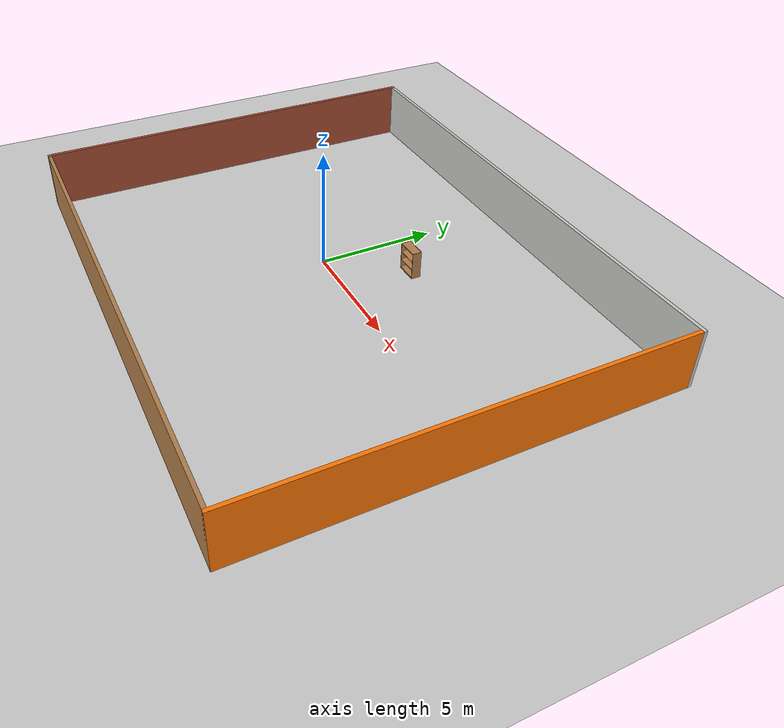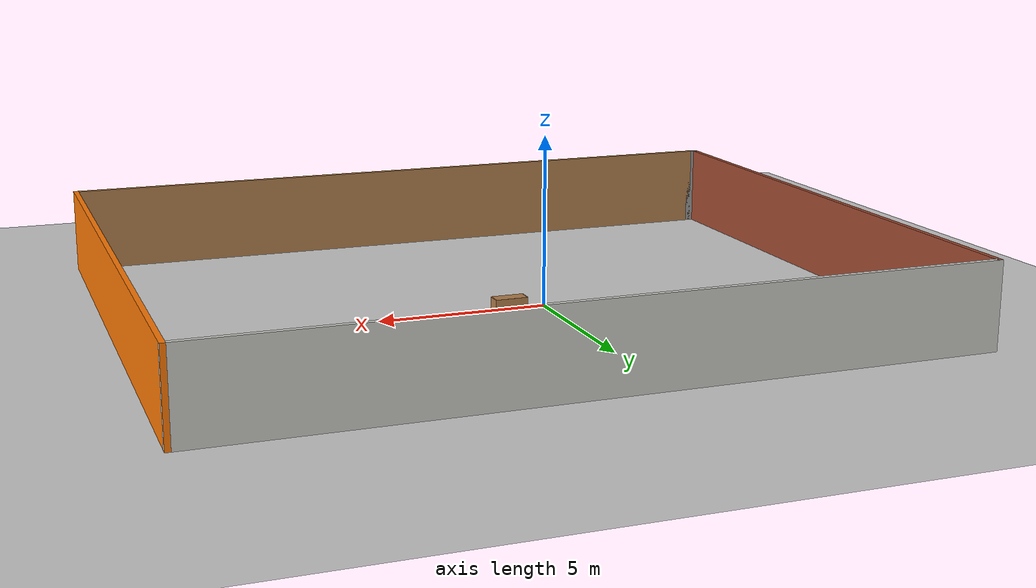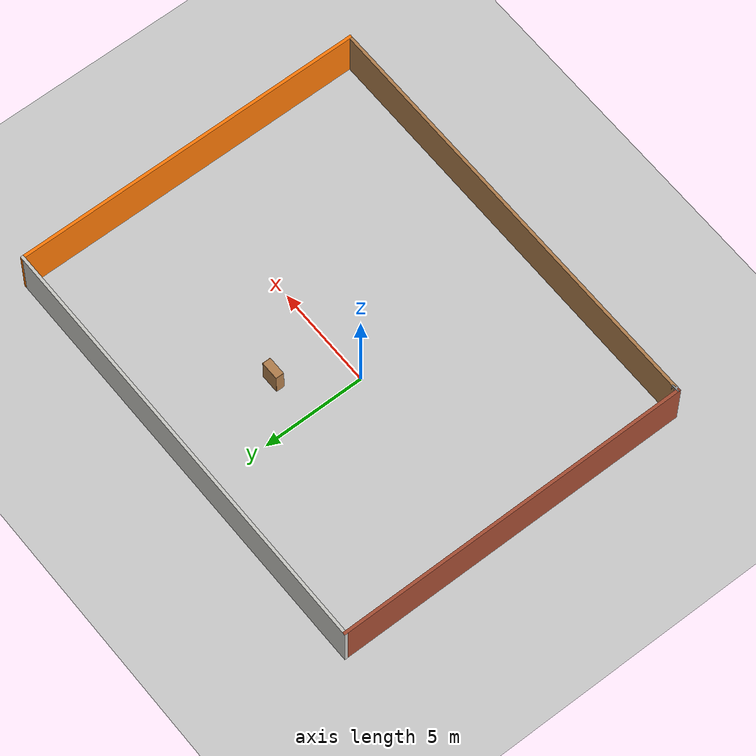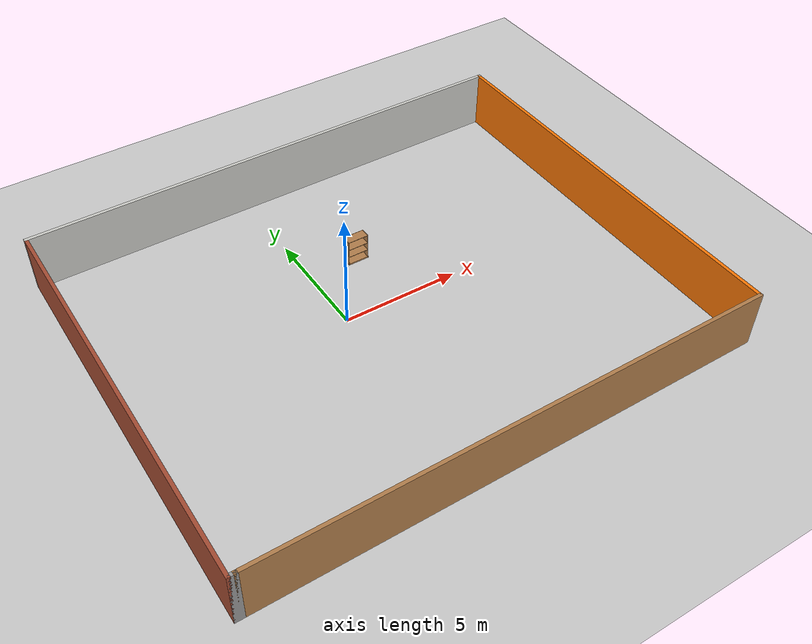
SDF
<sdf version="1.7">
 <world name="default">
  <light name="sun" type="directional">
   <pose>0 0 10 0 -0 0</pose>
   <diffuse>0.8 0.8 0.8 1</diffuse>
   <specular>0.2 0.2 0.2 1</specular>
   <attenuation>
    <range>1000</range>
    <constant>0.9</constant>
    <linear>0.01</linear>
    <quadratic>0.001</quadratic>
   </attenuation>
   <direction>-0.5 0.1 -0.9</direction>
   <spot><inner_angle>0</inner_angle><outer_angle>0</outer_angle><falloff>0</falloff></spot>
  </light>
  <model name="ground_plane">
   <static>1</static>
   <link name="link">
    <collision name="collision">
     <geometry><plane><normal>0 0 1</normal><size>100 100</size></plane></geometry>
     <surface>
      <contact><collide_bitmask>65535</collide_bitmask></contact>
      <friction><ode><mu>100</mu><mu2>50</mu2></ode></friction>
     </surface>
    </collision>
    <visual name="visual">
     <cast_shadows>0</cast_shadows>
     <geometry><plane><normal>0 0 1</normal><size>100 100</size></plane></geometry>
     <material>
      <script><uri>file://media/materials/scripts/gazebo.material</uri><name>Gazebo/Grey</name></script>
     </material>
    </visual>
   </link>
  </model>
  <gravity>0 0 -9.8</gravity>
  <magnetic_field>6e-06 2.3e-05 -4.2e-05</magnetic_field>
  <atmosphere type="adiabatic"/>
  <physics type="ode">
   <max_step_size>0.001</max_step_size>
   <real_time_factor>1</real_time_factor>
   <real_time_update_rate>1000</real_time_update_rate>
  </physics>
  <scene><ambient>0.4 0.4 0.4 1</ambient><background>0.7 0.7 0.7 1</background><shadows>1</shadows></scene>
  <audio><device>default</device></audio>
  <spherical_coordinates>
   <surface_model>EARTH_WGS84</surface_model>
   <latitude_deg>0</latitude_deg>
   <longitude_deg>0</longitude_deg>
   <elevation>0</elevation>
   <heading_deg>0</heading_deg>
  </spherical_coordinates>
  <model name="building">
   <pose>1.38749 -0.403194 0 0 -0 0</pose>
   <link name="Wall_10">
    <collision name="Wall_10_Collision">
     <geometry><box><size>17.5 0.15 2.5</size></box></geometry>
     <pose>0 0 1.25 0 -0 0</pose>
    </collision>
    <visual name="Wall_10_Visual">
     <pose>0 0 1.25 0 -0 0</pose>
     <geometry><box><size>17.5 0.15 2.5</size></box></geometry>
     <material>
      <script><uri>file://media/materials/scripts/gazebo.material</uri><name>Gazebo/Bricks</name></script>
      <ambient>1 1 1 1</ambient>
     </material>
     <meta><layer>0</layer></meta>
    </visual>
    <pose>-10.8 -0 0 0 -0 -1.5708</pose>
   </link>
   <link name="Wall_11">
    <collision name="Wall_11_Collision">
     <geometry><box><size>0.4 0.15 2.5</size></box></geometry>
     <pose>0 0 1.25 0 -0 0</pose>
    </collision>
    <visual name="Wall_11_Visual">
     <pose>0 0 1.25 0 -0 0</pose>
     <geometry><box><size>0.4 0.15 2.5</size></box></geometry>
     <material>
      <script><uri>file://media/materials/scripts/gazebo.material</uri><name>Gazebo/Grey</name></script>
      <ambient>1 1 1 1</ambient>
     </material>
     <meta><layer>0</layer></meta>
    </visual>
    <pose>-10.675 -8.675 0 0 -0 0</pose>
   </link>
   <link name="Wall_7">
    <collision name="Wall_7_Collision">
     <geometry><box><size>21.5 0.15 2.5</size></box></geometry>
     <pose>0 0 1.25 0 -0 0</pose>
    </collision>
    <visual name="Wall_7_Visual">
     <pose>0 0 1.25 0 -0 0</pose>
     <geometry><box><size>21.5 0.15 2.5</size></box></geometry>
     <material>
      <script><uri>file://media/materials/scripts/gazebo.material</uri><name>Gazebo/Wood</name></script>
      <ambient>1 1 1 1</ambient>
     </material>
     <meta><layer>0</layer></meta>
    </visual>
    <pose>0.125 -8.675 0 0 -0 0</pose>
   </link>
   <link name="Wall_8">
    <collision name="Wall_8_Collision">
     <geometry><box><size>17.5 0.15 2.5</size></box></geometry>
     <pose>0 0 1.25 0 -0 0</pose>
    </collision>
    <visual name="Wall_8_Visual">
     <pose>0 0 1.25 0 -0 0</pose>
     <geometry><box><size>17.5 0.15 2.5</size></box></geometry>
     <material>
      <script><uri>file://media/materials/scripts/gazebo.material</uri><name>Gazebo/Grey</name></script>
      <ambient>0.996078 0.47451 0.0196078 1</ambient>
     </material>
     <meta><layer>0</layer></meta>
    </visual>
    <pose>10.8 -0 0 0 -0 1.5708</pose>
   </link>
   <link name="Wall_9">
    <collision name="Wall_9_Collision">
     <geometry><box><size>21.75 0.15 2.5</size></box></geometry>
     <pose>0 0 1.25 0 -0 0</pose>
    </collision>
    <visual name="Wall_9_Visual">
     <pose>0 0 1.25 0 -0 0</pose>
     <geometry><box><size>21.75 0.15 2.5</size></box></geometry>
     <material>
      <script><uri>file://media/materials/scripts/gazebo.material</uri><name>Gazebo/CeilingTiled</name></script>
      <ambient>1 1 1 1</ambient>
     </material>
     <meta><layer>0</layer></meta>
    </visual>
    <pose>-0 8.675 0 0 -0 3.14159</pose>
   </link>
   <static>1</static>
  </model>
  <model name="bookshelf">
   <static>1</static>
   <link name="link">
    <inertial><mass>1</mass></inertial>
    <collision name="back">
     <pose>0 0.005 0.6 0 -0 0</pose>
     <geometry><box><size>0.9 0.01 1.2</size></box></geometry>
    </collision>
    <visual name="visual1">
     <pose>0 0.005 0.6 0 -0 0</pose>
     <geometry><box><size>0.9 0.01 1.2</size></box></geometry>
     <material>
      <script><uri>file://media/materials/scripts/gazebo.material</uri><name>Gazebo/Wood</name></script>
     </material>
    </visual>
    <collision name="left_side">
     <pose>0.45 -0.195 0.6 0 -0 0</pose>
     <geometry><box><size>0.02 0.4 1.2</size></box></geometry>
    </collision>
    <visual name="visual2">
     <pose>0.45 -0.195 0.6 0 -0 0</pose>
     <geometry><box><size>0.02 0.4 1.2</size></box></geometry>
     <material>
      <script><uri>file://media/materials/scripts/gazebo.material</uri><name>Gazebo/Wood</name></script>
     </material>
    </visual>
    <collision name="right_side">
     <pose>-0.45 -0.195 0.6 0 -0 0</pose>
     <geometry><box><size>0.02 0.4 1.2</size></box></geometry>
    </collision>
    <visual name="visual3">
     <pose>-0.45 -0.195 0.6 0 -0 0</pose>
     <geometry><box><size>0.02 0.4 1.2</size></box></geometry>
     <material>
      <script><uri>file://media/materials/scripts/gazebo.material</uri><name>Gazebo/Wood</name></script>
     </material>
    </visual>
    <collision name="bottom">
     <pose>0 -0.195 0.03 0 -0 0</pose>
     <geometry><box><size>0.88 0.4 0.06</size></box></geometry>
    </collision>
    <visual name="visual4">
     <pose>0 -0.195 0.03 0 -0 0</pose>
     <geometry><box><size>0.88 0.4 0.06</size></box></geometry>
     <material>
      <script><uri>file://media/materials/scripts/gazebo.material</uri><name>Gazebo/Wood</name></script>
     </material>
    </visual>
    <collision name="top">
     <pose>0 -0.195 1.19 0 -0 0</pose>
     <geometry><box><size>0.88 0.4 0.02</size></box></geometry>
    </collision>
    <visual name="visual5">
     <pose>0 -0.195 1.19 0 -0 0</pose>
     <geometry><box><size>0.88 0.4 0.02</size></box></geometry>
     <material>
      <script><uri>file://media/materials/scripts/gazebo.material</uri><name>Gazebo/Wood</name></script>
     </material>
    </visual>
    <collision name="low_shelf">
     <pose>0 -0.195 0.43 0 -0 0</pose>
     <geometry><box><size>0.88 0.4 0.02</size></box></geometry>
    </collision>
    <visual name="visual6">
     <pose>0 -0.195 0.43 0 -0 0</pose>
     <geometry><box><size>0.88 0.4 0.02</size></box></geometry>
     <material>
      <script><uri>file://media/materials/scripts/gazebo.material</uri><name>Gazebo/Wood</name></script>
     </material>
    </visual>
    <collision name="high_shelf">
     <pose>0 -0.195 0.8 0 -0 0</pose>
     <geometry><box><size>0.88 0.4 0.02</size></box></geometry>
    </collision>
    <visual name="visual7">
     <pose>0 -0.195 0.8 0 -0 0</pose>
     <geometry><box><size>0.88 0.4 0.02</size></box></geometry>
     <material>
      <script><uri>file://media/materials/scripts/gazebo.material</uri><name>Gazebo/Wood</name></script>
     </material>
    </visual>
   </link>
   <pose>2.17544 3.09377 0 0 -0 0</pose>
  </model>
 </world>
</sdf>
